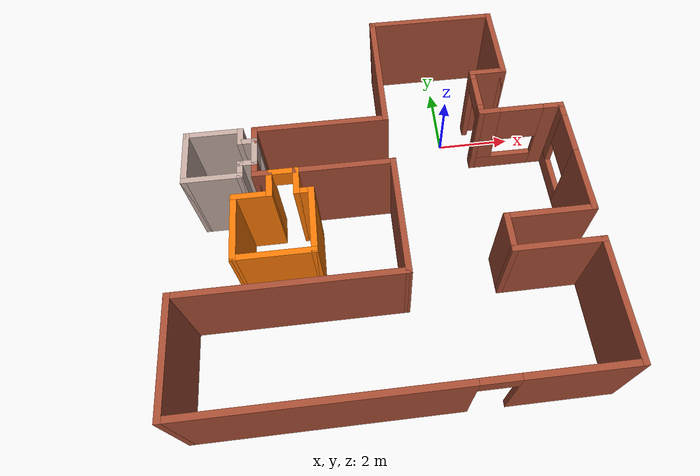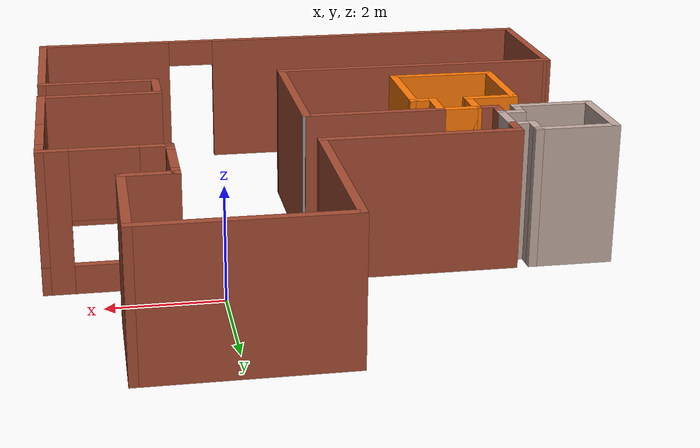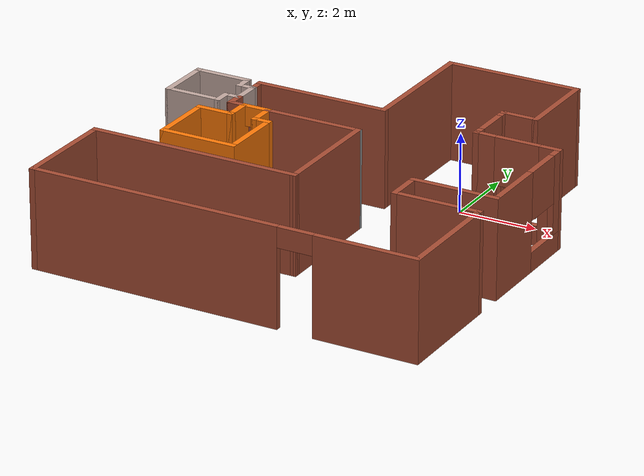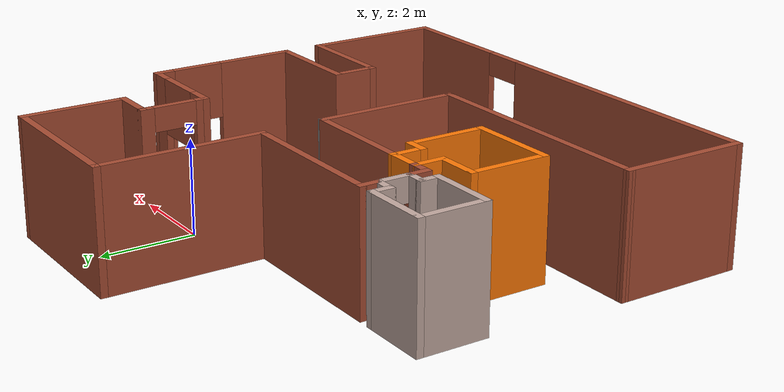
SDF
<?xml version='1.0'?>
<sdf version='1.6'>
  <model name='home'>
    <pose frame=''>-2.0249 -2.42178 0 0 -0 0</pose>
    <link name='Wall_10'>
      <collision name='Wall_10_Collision'>
        <geometry>
          <box>
            <size>2.25 0.15 2.5</size>
          </box>
        </geometry>
        <pose frame=''>0 0 1.25 0 -0 0</pose>
      </collision>
      <visual name='Wall_10_Visual'>
        <pose frame=''>0 0 1.25 0 -0 0</pose>
        <geometry>
          <box>
            <size>2.25 0.15 2.5</size>
          </box>
        </geometry>
        <material>
          <script>
            <uri>file://media/materials/scripts/gazebo.material</uri>
            <name>Gazebo/Bricks</name>
          </script>
          <ambient>1 1 1 1</ambient>
        </material>
        <meta>
          <layer>0</layer>
        </meta>
      </visual>
      <pose frame=''>3.67503 4.075 0 0 -0 1.5708</pose>
    </link>
    <link name='Wall_11'>
      <collision name='Wall_11_Collision'>
        <geometry>
          <box>
            <size>3.5 0.15 2.5</size>
          </box>
        </geometry>
        <pose frame=''>0 0 1.25 0 -0 0</pose>
      </collision>
      <visual name='Wall_11_Visual'>
        <pose frame=''>0 0 1.25 0 -0 0</pose>
        <geometry>
          <box>
            <size>3.5 0.15 2.5</size>
          </box>
        </geometry>
        <material>
          <script>
            <uri>file://media/materials/scripts/gazebo.material</uri>
            <name>Gazebo/Bricks</name>
          </script>
          <ambient>1 1 1 1</ambient>
        </material>
        <meta>
          <layer>0</layer>
        </meta>
      </visual>
      <pose frame=''>2.00003 5.125 0 0 -0 3.14159</pose>
    </link>
    <link name='Wall_12'>
      <collision name='Wall_12_Collision'>
        <geometry>
          <box>
            <size>3.5 0.15 2.5</size>
          </box>
        </geometry>
        <pose frame=''>0 0 1.25 0 -0 0</pose>
      </collision>
      <visual name='Wall_12_Visual'>
        <pose frame=''>0 0 1.25 0 -0 0</pose>
        <geometry>
          <box>
            <size>3.5 0.15 2.5</size>
          </box>
        </geometry>
        <material>
          <script>
            <uri>file://media/materials/scripts/gazebo.material</uri>
            <name>Gazebo/Bricks</name>
          </script>
          <ambient>1 1 1 1</ambient>
        </material>
        <meta>
          <layer>0</layer>
        </meta>
      </visual>
      <pose frame=''>0.325032 3.45 0 0 0 -1.5708</pose>
    </link>
    <link name='Wall_13'>
      <collision name='Wall_13_Collision'>
        <geometry>
          <box>
            <size>3.5 0.15 2.5</size>
          </box>
        </geometry>
        <pose frame=''>0 0 1.25 0 -0 0</pose>
      </collision>
      <visual name='Wall_13_Visual'>
        <pose frame=''>0 0 1.25 0 -0 0</pose>
        <geometry>
          <box>
            <size>3.5 0.15 2.5</size>
          </box>
        </geometry>
        <material>
          <script>
            <uri>file://media/materials/scripts/gazebo.material</uri>
            <name>Gazebo/Bricks</name>
          </script>
          <ambient>1 1 1 1</ambient>
        </material>
        <meta>
          <layer>0</layer>
        </meta>
      </visual>
      <pose frame=''>-1.34997 1.775 0 0 -0 3.14159</pose>
    </link>
    <link name='Wall_14'>
      <collision name='Wall_14_Collision'>
        <geometry>
          <box>
            <size>0.5 0.15 2.5</size>
          </box>
        </geometry>
        <pose frame=''>0 0 1.25 0 -0 0</pose>
      </collision>
      <visual name='Wall_14_Visual'>
        <pose frame=''>0 0 1.25 0 -0 0</pose>
        <geometry>
          <box>
            <size>0.5 0.15 2.5</size>
          </box>
        </geometry>
        <material>
          <script>
            <uri>file://media/materials/scripts/gazebo.material</uri>
            <name>Gazebo/Bricks</name>
          </script>
          <ambient>1 1 1 1</ambient>
        </material>
        <meta>
          <layer>0</layer>
        </meta>
      </visual>
      <pose frame=''>-3.02497 1.6 0 0 0 -1.5708</pose>
    </link>
    <link name='Wall_15'>
      <collision name='Wall_15_Collision'>
        <geometry>
          <box>
            <size>0.5 0.15 2.5</size>
          </box>
        </geometry>
        <pose frame=''>0 0 1.25 0 -0 0</pose>
      </collision>
      <visual name='Wall_15_Visual'>
        <pose frame=''>0 0 1.25 0 -0 0</pose>
        <geometry>
          <box>
            <size>0.5 0.15 2.5</size>
          </box>
        </geometry>
        <material>
          <script>
            <uri>file://media/materials/scripts/gazebo.material</uri>
            <name>Gazebo/Grey</name>
          </script>
          <ambient>0.760784 0.662745 0.627451 1</ambient>
        </material>
        <meta>
          <layer>0</layer>
        </meta>
      </visual>
      <pose frame=''>-3.19997 1.425 0 0 -0 3.14159</pose>
    </link>
    <link name='Wall_16'>
      <collision name='Wall_16_Collision'>
        <geometry>
          <box>
            <size>0.5 0.15 2.5</size>
          </box>
        </geometry>
        <pose frame=''>0 0 1.25 0 -0 0</pose>
      </collision>
      <visual name='Wall_16_Visual'>
        <pose frame=''>0 0 1.25 0 -0 0</pose>
        <geometry>
          <box>
            <size>0.5 0.15 2.5</size>
          </box>
        </geometry>
        <material>
          <script>
            <uri>file://media/materials/scripts/gazebo.material</uri>
            <name>Gazebo/Grey</name>
          </script>
          <ambient>0.760784 0.662745 0.627451 1</ambient>
        </material>
        <meta>
          <layer>0</layer>
        </meta>
      </visual>
      <pose frame=''>-3.37497 1.6 0 0 -0 1.5708</pose>
    </link>
    <link name='Wall_17'>
      <collision name='Wall_17_Collision'>
        <geometry>
          <box>
            <size>1.5 0.15 2.5</size>
          </box>
        </geometry>
        <pose frame=''>0 0 1.25 0 -0 0</pose>
      </collision>
      <visual name='Wall_17_Visual'>
        <pose frame=''>0 0 1.25 0 -0 0</pose>
        <geometry>
          <box>
            <size>1.5 0.15 2.5</size>
          </box>
        </geometry>
        <material>
          <script>
            <uri>file://media/materials/scripts/gazebo.material</uri>
            <name>Gazebo/Grey</name>
          </script>
          <ambient>0.760784 0.662745 0.627451 1</ambient>
        </material>
        <meta>
          <layer>0</layer>
        </meta>
      </visual>
      <pose frame=''>-4.04997 1.775 0 0 -0 3.14159</pose>
    </link>
    <link name='Wall_18'>
      <collision name='Wall_18_Collision'>
        <geometry>
          <box>
            <size>1.5 0.15 2.5</size>
          </box>
        </geometry>
        <pose frame=''>0 0 1.25 0 -0 0</pose>
      </collision>
      <visual name='Wall_18_Visual'>
        <pose frame=''>0 0 1.25 0 -0 0</pose>
        <geometry>
          <box>
            <size>1.5 0.15 2.5</size>
          </box>
        </geometry>
        <material>
          <script>
            <uri>file://media/materials/scripts/gazebo.material</uri>
            <name>Gazebo/Grey</name>
          </script>
          <ambient>0.760784 0.662745 0.627451 1</ambient>
        </material>
        <meta>
          <layer>0</layer>
        </meta>
      </visual>
      <pose frame=''>-4.72497 1.1 0 0 0 -1.5708</pose>
    </link>
    <link name='Wall_19'>
      <collision name='Wall_19_Collision'>
        <geometry>
          <box>
            <size>1.5 0.15 2.5</size>
          </box>
        </geometry>
        <pose frame=''>0 0 1.25 0 -0 0</pose>
      </collision>
      <visual name='Wall_19_Visual'>
        <pose frame=''>0 0 1.25 0 -0 0</pose>
        <geometry>
          <box>
            <size>1.5 0.15 2.5</size>
          </box>
        </geometry>
        <material>
          <script>
            <uri>file://media/materials/scripts/gazebo.material</uri>
            <name>Gazebo/Grey</name>
          </script>
          <ambient>0.760784 0.662745 0.627451 1</ambient>
        </material>
        <meta>
          <layer>0</layer>
        </meta>
      </visual>
      <pose frame=''>-4.04997 0.425 0 0 -0 0</pose>
    </link>
    <link name='Wall_2'>
      <collision name='Wall_2_Collision'>
        <geometry>
          <box>
            <size>3 0.15 2.5</size>
          </box>
        </geometry>
        <pose frame=''>0 0 1.25 0 -0 0</pose>
      </collision>
      <visual name='Wall_2_Visual'>
        <pose frame=''>0 0 1.25 0 -0 0</pose>
        <geometry>
          <box>
            <size>3 0.15 2.5</size>
          </box>
        </geometry>
        <material>
          <script>
            <uri>file://media/materials/scripts/gazebo.material</uri>
            <name>Gazebo/Bricks</name>
          </script>
          <ambient>1 1 1 1</ambient>
        </material>
        <meta>
          <layer>0</layer>
        </meta>
      </visual>
      <pose frame=''>4.92503 -3.7 0 0 -0 1.5708</pose>
    </link>
    <link name='Wall_20'>
      <collision name='Wall_20_Collision'>
        <geometry>
          <box>
            <size>0.5 0.15 2.5</size>
          </box>
        </geometry>
        <pose frame=''>0 0 1.25 0 -0 0</pose>
      </collision>
      <visual name='Wall_20_Visual'>
        <pose frame=''>0 0 1.25 0 -0 0</pose>
        <geometry>
          <box>
            <size>0.5 0.15 2.5</size>
          </box>
        </geometry>
        <material>
          <script>
            <uri>file://media/materials/scripts/gazebo.material</uri>
            <name>Gazebo/Grey</name>
          </script>
          <ambient>0.760784 0.662745 0.627451 1</ambient>
        </material>
        <meta>
          <layer>0</layer>
        </meta>
      </visual>
      <pose frame=''>-3.37497 0.6 0 0 -0 1.5708</pose>
    </link>
    <link name='Wall_21'>
      <collision name='Wall_21_Collision'>
        <geometry>
          <box>
            <size>0.5 0.15 2.5</size>
          </box>
        </geometry>
        <pose frame=''>0 0 1.25 0 -0 0</pose>
      </collision>
      <visual name='Wall_21_Visual'>
        <pose frame=''>0 0 1.25 0 -0 0</pose>
        <geometry>
          <box>
            <size>0.5 0.15 2.5</size>
          </box>
        </geometry>
        <material>
          <script>
            <uri>file://media/materials/scripts/gazebo.material</uri>
            <name>Gazebo/Grey</name>
          </script>
          <ambient>0.760784 0.662745 0.627451 1</ambient>
        </material>
        <meta>
          <layer>0</layer>
        </meta>
      </visual>
      <pose frame=''>-3.19997 0.775 0 0 -0 0</pose>
    </link>
    <link name='Wall_22'>
      <collision name='Wall_22_Collision'>
        <geometry>
          <box>
            <size>0.5 0.15 2.5</size>
          </box>
        </geometry>
        <pose frame=''>0 0 1.25 0 -0 0</pose>
      </collision>
      <visual name='Wall_22_Visual'>
        <pose frame=''>0 0 1.25 0 -0 0</pose>
        <geometry>
          <box>
            <size>0.5 0.15 2.5</size>
          </box>
        </geometry>
        <material>
          <script>
            <uri>file://media/materials/scripts/gazebo.material</uri>
            <name>Gazebo/Bricks</name>
          </script>
          <ambient>1 1 1 1</ambient>
        </material>
        <meta>
          <layer>0</layer>
        </meta>
      </visual>
      <pose frame=''>-3.02497 0.6 0 0 0 -1.5708</pose>
    </link>
    <link name='Wall_23'>
      <collision name='Wall_23_Collision'>
        <geometry>
          <box>
            <size>0.5 0.15 2.5</size>
          </box>
        </geometry>
        <pose frame=''>0 0 1.25 0 -0 0</pose>
      </collision>
      <visual name='Wall_23_Visual'>
        <pose frame=''>0 0 1.25 0 -0 0</pose>
        <geometry>
          <box>
            <size>0.5 0.15 2.5</size>
          </box>
        </geometry>
        <material>
          <script>
            <uri>file://media/materials/scripts/gazebo.material</uri>
            <name>Gazebo/Bricks</name>
          </script>
          <ambient>1 1 1 1</ambient>
        </material>
        <meta>
          <layer>0</layer>
        </meta>
      </visual>
      <pose frame=''>-2.84997 0.425 0 0 -0 0</pose>
    </link>
    <link name='Wall_24'>
      <collision name='Wall_24_Collision'>
        <geometry>
          <box>
            <size>0.75 0.15 2.5</size>
          </box>
        </geometry>
        <pose frame=''>0 0 1.25 0 -0 0</pose>
      </collision>
      <visual name='Wall_24_Visual'>
        <pose frame=''>0 0 1.25 0 -0 0</pose>
        <geometry>
          <box>
            <size>0.75 0.15 2.5</size>
          </box>
        </geometry>
        <material>
          <script>
            <uri>file://media/materials/scripts/gazebo.material</uri>
            <name>Gazebo/Grey</name>
          </script>
          <ambient>0.996078 0.47451 0.0196078 1</ambient>
        </material>
        <meta>
          <layer>0</layer>
        </meta>
      </visual>
      <pose frame=''>-2.67497 0.125 0 0 0 -1.5708</pose>
    </link>
    <link name='Wall_28'>
      <collision name='Wall_28_Collision'>
        <geometry>
          <box>
            <size>1 0.15 2.5</size>
          </box>
        </geometry>
        <pose frame=''>0 0 1.25 0 -0 0</pose>
      </collision>
      <visual name='Wall_28_Visual'>
        <pose frame=''>0 0 1.25 0 -0 0</pose>
        <geometry>
          <box>
            <size>1 0.15 2.5</size>
          </box>
        </geometry>
        <material>
          <script>
            <uri>file://media/materials/scripts/gazebo.material</uri>
            <name>Gazebo/Grey</name>
          </script>
          <ambient>0.996078 0.47451 0.0196078 1</ambient>
        </material>
        <meta>
          <layer>0</layer>
        </meta>
      </visual>
      <pose frame=''>-3.09997 -0.175 0 0 -0 3.14159</pose>
    </link>
    <link name='Wall_29'>
      <collision name='Wall_29_Collision'>
        <geometry>
          <box>
            <size>1.75 0.15 2.5</size>
          </box>
        </geometry>
        <pose frame=''>0 0 1.25 0 -0 0</pose>
      </collision>
      <visual name='Wall_29_Visual'>
        <pose frame=''>0 0 1.25 0 -0 0</pose>
        <geometry>
          <box>
            <size>1.75 0.15 2.5</size>
          </box>
        </geometry>
        <material>
          <script>
            <uri>file://media/materials/scripts/gazebo.material</uri>
            <name>Gazebo/Grey</name>
          </script>
          <ambient>0.996078 0.47451 0.0196078 1</ambient>
        </material>
        <meta>
          <layer>0</layer>
        </meta>
      </visual>
      <pose frame=''>-3.52497 -0.975 0 0 0 -1.5708</pose>
    </link>
    <link name='Wall_3'>
      <collision name='Wall_3_Collision'>
        <geometry>
          <box>
            <size>2.25 0.15 2.5</size>
          </box>
        </geometry>
        <pose frame=''>0 0 1.25 0 -0 0</pose>
      </collision>
      <visual name='Wall_3_Visual'>
        <pose frame=''>0 0 1.25 0 -0 0</pose>
        <geometry>
          <box>
            <size>2.25 0.15 2.5</size>
          </box>
        </geometry>
        <material>
          <script>
            <uri>file://media/materials/scripts/gazebo.material</uri>
            <name>Gazebo/Bricks</name>
          </script>
          <ambient>1 1 1 1</ambient>
        </material>
        <meta>
          <layer>0</layer>
        </meta>
      </visual>
      <pose frame=''>3.87503 -2.275 0 0 -0 3.14159</pose>
    </link>
    <link name='Wall_33'>
      <collision name='Wall_33_Collision'>
        <geometry>
          <box>
            <size>2 0.15 2.5</size>
          </box>
        </geometry>
        <pose frame=''>0 0 1.25 0 -0 0</pose>
      </collision>
      <visual name='Wall_33_Visual'>
        <pose frame=''>0 0 1.25 0 -0 0</pose>
        <geometry>
          <box>
            <size>2 0.15 2.5</size>
          </box>
        </geometry>
        <material>
          <script>
            <uri>file://media/materials/scripts/gazebo.material</uri>
            <name>Gazebo/Grey</name>
          </script>
          <ambient>0.996078 0.47451 0.0196078 1</ambient>
        </material>
        <meta>
          <layer>0</layer>
        </meta>
      </visual>
      <pose frame=''>-2.59997 -1.775 0 0 -0 0</pose>
    </link>
    <link name='Wall_34'>
      <collision name='Wall_34_Collision'>
        <geometry>
          <box>
            <size>1.75 0.15 2.5</size>
          </box>
        </geometry>
        <pose frame=''>0 0 1.25 0 -0 0</pose>
      </collision>
      <visual name='Wall_34_Visual'>
        <pose frame=''>0 0 1.25 0 -0 0</pose>
        <geometry>
          <box>
            <size>1.75 0.15 2.5</size>
          </box>
        </geometry>
        <material>
          <script>
            <uri>file://media/materials/scripts/gazebo.material</uri>
            <name>Gazebo/Grey</name>
          </script>
          <ambient>0.996078 0.47451 0.0196078 1</ambient>
        </material>
        <meta>
          <layer>0</layer>
        </meta>
      </visual>
      <pose frame=''>-1.67497 -0.975 0 0 -0 1.5708</pose>
    </link>
    <link name='Wall_35'>
      <collision name='Wall_35_Collision'>
        <geometry>
          <box>
            <size>0.5 0.15 2.5</size>
          </box>
        </geometry>
        <pose frame=''>0 0 1.25 0 -0 0</pose>
      </collision>
      <visual name='Wall_35_Visual'>
        <pose frame=''>0 0 1.25 0 -0 0</pose>
        <geometry>
          <box>
            <size>0.5 0.15 2.5</size>
          </box>
        </geometry>
        <material>
          <script>
            <uri>file://media/materials/scripts/gazebo.material</uri>
            <name>Gazebo/Grey</name>
          </script>
          <ambient>0.996078 0.47451 0.0196078 1</ambient>
        </material>
        <meta>
          <layer>0</layer>
        </meta>
      </visual>
      <pose frame=''>-1.84997 -0.175 0 0 -0 3.14159</pose>
    </link>
    <link name='Wall_36'>
      <collision name='Wall_36_Collision'>
        <geometry>
          <box>
            <size>0.75 0.15 2.5</size>
          </box>
        </geometry>
        <pose frame=''>0 0 1.25 0 -0 0</pose>
      </collision>
      <visual name='Wall_36_Visual'>
        <pose frame=''>0 0 1.25 0 -0 0</pose>
        <geometry>
          <box>
            <size>0.75 0.15 2.5</size>
          </box>
        </geometry>
        <material>
          <script>
            <uri>file://media/materials/scripts/gazebo.material</uri>
            <name>Gazebo/Grey</name>
          </script>
          <ambient>0.996078 0.47451 0.0196078 1</ambient>
        </material>
        <meta>
          <layer>0</layer>
        </meta>
      </visual>
      <pose frame=''>-2.02497 0.125 0 0 -0 1.5708</pose>
    </link>
    <link name='Wall_37'>
      <collision name='Wall_37_Collision'>
        <geometry>
          <box>
            <size>2.5 0.15 2.5</size>
          </box>
        </geometry>
        <pose frame=''>0 0 1.25 0 -0 0</pose>
      </collision>
      <visual name='Wall_37_Visual'>
        <pose frame=''>0 0 1.25 0 -0 0</pose>
        <geometry>
          <box>
            <size>2.5 0.15 2.5</size>
          </box>
        </geometry>
        <material>
          <script>
            <uri>file://media/materials/scripts/gazebo.material</uri>
            <name>Gazebo/Bricks</name>
          </script>
          <ambient>1 1 1 1</ambient>
        </material>
        <meta>
          <layer>0</layer>
        </meta>
      </visual>
      <pose frame=''>-0.849968 0.425 0 0 -0 0</pose>
    </link>
    <link name='Wall_4'>
      <collision name='Wall_4_Collision'>
        <geometry>
          <box>
            <size>1 0.15 2.5</size>
          </box>
        </geometry>
        <pose frame=''>0 0 1.25 0 -0 0</pose>
      </collision>
      <visual name='Wall_4_Visual'>
        <pose frame=''>0 0 1.25 0 -0 0</pose>
        <geometry>
          <box>
            <size>1 0.15 2.5</size>
          </box>
        </geometry>
        <material>
          <script>
            <uri>file://media/materials/scripts/gazebo.material</uri>
            <name>Gazebo/Bricks</name>
          </script>
          <ambient>1 1 1 1</ambient>
        </material>
        <meta>
          <layer>0</layer>
        </meta>
      </visual>
      <pose frame=''>2.82503 -1.85 0 0 -0 1.5708</pose>
    </link>
    <link name='Wall_43'>
      <pose frame=''>3.2e-05 -5.125 0 0 -0 3.14159</pose>
      <visual name='Wall_43_Visual_0'>
        <pose frame=''>-3.68092 0 1.25 0 -0 0</pose>
        <geometry>
          <box>
            <size>2.63816 0.15 2.5</size>
          </box>
        </geometry>
        <material>
          <script>
            <uri>file://media/materials/scripts/gazebo.material</uri>
            <name>Gazebo/Bricks</name>
          </script>
          <ambient>1 1 1 1</ambient>
        </material>
        <meta>
          <layer>0</layer>
        </meta>
      </visual>
      <collision name='Wall_43_Collision_0'>
        <geometry>
          <box>
            <size>2.63816 0.15 2.5</size>
          </box>
        </geometry>
        <pose frame=''>-3.68092 0 1.25 0 -0 0</pose>
      </collision>
      <visual name='Wall_43_Visual_1'>
        <pose frame=''>1.76908 0 1.25 0 -0 0</pose>
        <geometry>
          <box>
            <size>6.46184 0.15 2.5</size>
          </box>
        </geometry>
        <material>
          <script>
            <uri>file://media/materials/scripts/gazebo.material</uri>
            <name>Gazebo/Bricks</name>
          </script>
          <ambient>1 1 1 1</ambient>
        </material>
        <meta>
          <layer>0</layer>
        </meta>
      </visual>
      <collision name='Wall_43_Collision_1'>
        <geometry>
          <box>
            <size>6.46184 0.15 2.5</size>
          </box>
        </geometry>
        <pose frame=''>1.76908 0 1.25 0 -0 0</pose>
      </collision>
      <visual name='Wall_43_Visual_2'>
        <pose frame=''>-1.91184 0 2.25 0 -0 0</pose>
        <geometry>
          <box>
            <size>0.9 0.15 0.5</size>
          </box>
        </geometry>
        <material>
          <script>
            <uri>file://media/materials/scripts/gazebo.material</uri>
            <name>Gazebo/Bricks</name>
          </script>
          <ambient>1 1 1 1</ambient>
        </material>
        <meta>
          <layer>0</layer>
        </meta>
      </visual>
      <collision name='Wall_43_Collision_2'>
        <geometry>
          <box>
            <size>0.9 0.15 0.5</size>
          </box>
        </geometry>
        <pose frame=''>-1.91184 0 2.25 0 -0 0</pose>
      </collision>
    </link>
    <link name='Wall_44'>
      <collision name='Wall_44_Collision'>
        <geometry>
          <box>
            <size>2.75 0.15 2.5</size>
          </box>
        </geometry>
        <pose frame=''>0 0 1.25 0 -0 0</pose>
      </collision>
      <visual name='Wall_44_Visual'>
        <pose frame=''>0 0 1.25 0 -0 0</pose>
        <geometry>
          <box>
            <size>2.75 0.15 2.5</size>
          </box>
        </geometry>
        <material>
          <script>
            <uri>file://media/materials/scripts/gazebo.material</uri>
            <name>Gazebo/Bricks</name>
          </script>
          <ambient>1 1 1 1</ambient>
        </material>
        <meta>
          <layer>0</layer>
        </meta>
      </visual>
      <pose frame=''>-4.92497 -3.825 0 0 -0 1.5708</pose>
    </link>
    <link name='Wall_48'>
      <collision name='Wall_48_Collision'>
        <geometry>
          <box>
            <size>5.45338 0.15 2.5</size>
          </box>
        </geometry>
        <pose frame=''>0 0 1.25 0 -0 0</pose>
      </collision>
      <visual name='Wall_48_Visual'>
        <pose frame=''>0 0 1.25 0 -0 0</pose>
        <geometry>
          <box>
            <size>5.45338 0.15 2.5</size>
          </box>
        </geometry>
        <material>
          <script>
            <uri>file://media/materials/scripts/gazebo.material</uri>
            <name>Gazebo/Bricks</name>
          </script>
          <ambient>1 1 1 1</ambient>
        </material>
        <meta>
          <layer>0</layer>
        </meta>
      </visual>
      <pose frame=''>-2.27328 -2.52727 0 0 0 -0.000856</pose>
    </link>
    <link name='Wall_49'>
      <collision name='Wall_49_Collision'>
        <geometry>
          <box>
            <size>3.09697 0.15 2.5</size>
          </box>
        </geometry>
        <pose frame=''>0 0 1.25 0 -0 0</pose>
      </collision>
      <visual name='Wall_49_Visual'>
        <pose frame=''>0 0 1.25 0 -0 0</pose>
        <geometry>
          <box>
            <size>3.09697 0.15 2.5</size>
          </box>
        </geometry>
        <material>
          <script>
            <uri>file://media/materials/scripts/gazebo.material</uri>
            <name>Gazebo/Bricks</name>
          </script>
          <ambient>1 1 1 1</ambient>
        </material>
        <meta>
          <layer>0</layer>
        </meta>
      </visual>
      <pose frame=''>0.375849 -1.05607 0 0 -0 1.57254</pose>
    </link>
    <link name='Wall_5'>
      <collision name='Wall_5_Collision'>
        <geometry>
          <box>
            <size>2.25 0.15 2.5</size>
          </box>
        </geometry>
        <pose frame=''>0 0 1.25 0 -0 0</pose>
      </collision>
      <visual name='Wall_5_Visual'>
        <pose frame=''>0 0 1.25 0 -0 0</pose>
        <geometry>
          <box>
            <size>2.25 0.15 2.5</size>
          </box>
        </geometry>
        <material>
          <script>
            <uri>file://media/materials/scripts/gazebo.material</uri>
            <name>Gazebo/Bricks</name>
          </script>
          <ambient>1 1 1 1</ambient>
        </material>
        <meta>
          <layer>0</layer>
        </meta>
      </visual>
      <pose frame=''>3.87503 -1.425 0 0 -0 0</pose>
    </link>
    <link name='Wall_52'>
      <collision name='Wall_52_Collision'>
        <geometry>
          <box>
            <size>0.15 0.15 2.5</size>
          </box>
        </geometry>
        <pose frame=''>0 0 1.25 0 -0 0</pose>
      </collision>
      <visual name='Wall_52_Visual'>
        <pose frame=''>0 0 1.25 0 -0 0</pose>
        <geometry>
          <box>
            <size>0.15 0.15 2.5</size>
          </box>
        </geometry>
        <material>
          <script>
            <uri>file://media/materials/scripts/gazebo.material</uri>
            <name>Gazebo/Grey</name>
          </script>
          <ambient>1 1 1 1</ambient>
        </material>
        <meta>
          <layer>0</layer>
        </meta>
      </visual>
      <pose frame=''>0.373287 0.421097 0 0 -0 0</pose>
    </link>
    <link name='Wall_55'>
      <pose frame=''>-3.02497 1.1 0 0 0 -1.5708</pose>
      <visual name='Wall_55_Visual_0'>
        <pose frame=''>-0.354187 0 1.25 0 -0 0</pose>
        <geometry>
          <box>
            <size>0.091626 0.15 2.5</size>
          </box>
        </geometry>
        <material>
          <script>
            <uri>file://media/materials/scripts/gazebo.material</uri>
            <name>Gazebo/Grey</name>
          </script>
          <ambient>0.760784 0.662745 0.627451 1</ambient>
        </material>
        <meta>
          <layer>0</layer>
        </meta>
      </visual>
      <collision name='Wall_55_Collision_0'>
        <geometry>
          <box>
            <size>0.091626 0.15 2.5</size>
          </box>
        </geometry>
        <pose frame=''>-0.354187 0 1.25 0 -0 0</pose>
      </collision>
      <visual name='Wall_55_Visual_1'>
        <pose frame=''>0.362229 0 1.25 0 -0 0</pose>
        <geometry>
          <box>
            <size>0.075541 0.15 2.5</size>
          </box>
        </geometry>
        <material>
          <script>
            <uri>file://media/materials/scripts/gazebo.material</uri>
            <name>Gazebo/Grey</name>
          </script>
          <ambient>0.760784 0.662745 0.627451 1</ambient>
        </material>
        <meta>
          <layer>0</layer>
        </meta>
      </visual>
      <collision name='Wall_55_Collision_1'>
        <geometry>
          <box>
            <size>0.075541 0.15 2.5</size>
          </box>
        </geometry>
        <pose frame=''>0.362229 0 1.25 0 -0 0</pose>
      </collision>
      <visual name='Wall_55_Visual_2'>
        <pose frame=''>0.008042 0 2.25 0 -0 0</pose>
        <geometry>
          <box>
            <size>0.632833 0.15 0.5</size>
          </box>
        </geometry>
        <material>
          <script>
            <uri>file://media/materials/scripts/gazebo.material</uri>
            <name>Gazebo/Grey</name>
          </script>
          <ambient>0.760784 0.662745 0.627451 1</ambient>
        </material>
        <meta>
          <layer>0</layer>
        </meta>
      </visual>
      <collision name='Wall_55_Collision_2'>
        <geometry>
          <box>
            <size>0.632833 0.15 0.5</size>
          </box>
        </geometry>
        <pose frame=''>0.008042 0 2.25 0 -0 0</pose>
      </collision>
    </link>
    <link name='Wall_57'>
      <pose frame=''>-2.34997 0.425 0 0 -0 0</pose>
      <visual name='Wall_57_Visual_0'>
        <pose frame=''>-0.365442 0 1.25 0 -0 0</pose>
        <geometry>
          <box>
            <size>0.069115 0.15 2.5</size>
          </box>
        </geometry>
        <material>
          <script>
            <uri>file://media/materials/scripts/gazebo.material</uri>
            <name>Gazebo/Grey</name>
          </script>
          <ambient>0.996078 0.47451 0.0196078 1</ambient>
        </material>
        <meta>
          <layer>0</layer>
        </meta>
      </visual>
      <collision name='Wall_57_Collision_0'>
        <geometry>
          <box>
            <size>0.069115 0.15 2.5</size>
          </box>
        </geometry>
        <pose frame=''>-0.365442 0 1.25 0 -0 0</pose>
      </collision>
      <visual name='Wall_57_Visual_1'>
        <pose frame=''>0.355623 0 1.25 0 -0 0</pose>
        <geometry>
          <box>
            <size>0.088753 0.15 2.5</size>
          </box>
        </geometry>
        <material>
          <script>
            <uri>file://media/materials/scripts/gazebo.material</uri>
            <name>Gazebo/Grey</name>
          </script>
          <ambient>0.996078 0.47451 0.0196078 1</ambient>
        </material>
        <meta>
          <layer>0</layer>
        </meta>
      </visual>
      <collision name='Wall_57_Collision_1'>
        <geometry>
          <box>
            <size>0.088753 0.15 2.5</size>
          </box>
        </geometry>
        <pose frame=''>0.355623 0 1.25 0 -0 0</pose>
      </collision>
      <visual name='Wall_57_Visual_2'>
        <pose frame=''>-0.009819 0 2.25 0 -0 0</pose>
        <geometry>
          <box>
            <size>0.642131 0.15 0.5</size>
          </box>
        </geometry>
        <material>
          <script>
            <uri>file://media/materials/scripts/gazebo.material</uri>
            <name>Gazebo/Grey</name>
          </script>
          <ambient>0.996078 0.47451 0.0196078 1</ambient>
        </material>
        <meta>
          <layer>0</layer>
        </meta>
      </visual>
      <collision name='Wall_57_Collision_2'>
        <geometry>
          <box>
            <size>0.642131 0.15 0.5</size>
          </box>
        </geometry>
        <pose frame=''>-0.009819 0 2.25 0 -0 0</pose>
      </collision>
    </link>
    <link name='Wall_6'>
      <pose frame=''>4.92503 0.125 0 0 -0 1.5708</pose>
      <visual name='Wall_6_Visual_0'>
        <pose frame=''>-0.764074 0 1.25 0 -0 0</pose>
        <geometry>
          <box>
            <size>1.72185 0.15 2.5</size>
          </box>
        </geometry>
        <material>
          <script>
            <uri>file://media/materials/scripts/gazebo.material</uri>
            <name>Gazebo/Bricks</name>
          </script>
          <ambient>1 1 1 1</ambient>
        </material>
        <meta>
          <layer>0</layer>
        </meta>
      </visual>
      <collision name='Wall_6_Collision_0'>
        <geometry>
          <box>
            <size>1.72185 0.15 2.5</size>
          </box>
        </geometry>
        <pose frame=''>-0.764074 0 1.25 0 -0 0</pose>
      </collision>
      <visual name='Wall_6_Visual_1'>
        <pose frame=''>0.860926 0 0.25 0 -0 0</pose>
        <geometry>
          <box>
            <size>1.52815 0.15 0.5</size>
          </box>
        </geometry>
        <material>
          <script>
            <uri>file://media/materials/scripts/gazebo.material</uri>
            <name>Gazebo/Bricks</name>
          </script>
          <ambient>1 1 1 1</ambient>
        </material>
        <meta>
          <layer>0</layer>
        </meta>
      </visual>
      <collision name='Wall_6_Collision_1'>
        <geometry>
          <box>
            <size>1.52815 0.15 0.5</size>
          </box>
        </geometry>
        <pose frame=''>0.860926 0 0.25 0 -0 0</pose>
      </collision>
      <visual name='Wall_6_Visual_2'>
        <pose frame=''>1.40882 0 1.5 0 -0 0</pose>
        <geometry>
          <box>
            <size>0.432369 0.15 2</size>
          </box>
        </geometry>
        <material>
          <script>
            <uri>file://media/materials/scripts/gazebo.material</uri>
            <name>Gazebo/Bricks</name>
          </script>
          <ambient>1 1 1 1</ambient>
        </material>
        <meta>
          <layer>0</layer>
        </meta>
      </visual>
      <collision name='Wall_6_Collision_2'>
        <geometry>
          <box>
            <size>0.432369 0.15 2</size>
          </box>
        </geometry>
        <pose frame=''>1.40882 0 1.5 0 -0 0</pose>
      </collision>
      <visual name='Wall_6_Visual_3'>
        <pose frame=''>0.644742 0 1.9 0 -0 0</pose>
        <geometry>
          <box>
            <size>1.09578 0.15 1.2</size>
          </box>
        </geometry>
        <material>
          <script>
            <uri>file://media/materials/scripts/gazebo.material</uri>
            <name>Gazebo/Bricks</name>
          </script>
          <ambient>1 1 1 1</ambient>
        </material>
        <meta>
          <layer>0</layer>
        </meta>
      </visual>
      <collision name='Wall_6_Collision_3'>
        <geometry>
          <box>
            <size>1.09578 0.15 1.2</size>
          </box>
        </geometry>
        <pose frame=''>0.644742 0 1.9 0 -0 0</pose>
      </collision>
    </link>
    <link name='Wall_7'>
      <pose frame=''>3.87503 1.675 0 0 -0 3.14159</pose>
      <visual name='Wall_7_Visual_0'>
        <pose frame=''>-0.852878 0 1.25 0 -0 0</pose>
        <geometry>
          <box>
            <size>0.544245 0.15 2.5</size>
          </box>
        </geometry>
        <material>
          <script>
            <uri>file://media/materials/scripts/gazebo.material</uri>
            <name>Gazebo/Bricks</name>
          </script>
          <ambient>1 1 1 1</ambient>
        </material>
        <meta>
          <layer>0</layer>
        </meta>
      </visual>
      <collision name='Wall_7_Collision_0'>
        <geometry>
          <box>
            <size>0.544245 0.15 2.5</size>
          </box>
        </geometry>
        <pose frame=''>-0.852878 0 1.25 0 -0 0</pose>
      </collision>
      <visual name='Wall_7_Visual_1'>
        <pose frame=''>0.272122 0 0.25 0 -0 0</pose>
        <geometry>
          <box>
            <size>1.70575 0.15 0.5</size>
          </box>
        </geometry>
        <material>
          <script>
            <uri>file://media/materials/scripts/gazebo.material</uri>
            <name>Gazebo/Bricks</name>
          </script>
          <ambient>1 1 1 1</ambient>
        </material>
        <meta>
          <layer>0</layer>
        </meta>
      </visual>
      <collision name='Wall_7_Collision_1'>
        <geometry>
          <box>
            <size>1.70575 0.15 0.5</size>
          </box>
        </geometry>
        <pose frame=''>0.272122 0 0.25 0 -0 0</pose>
      </collision>
      <visual name='Wall_7_Visual_2'>
        <pose frame=''>0.841009 0 1.5 0 -0 0</pose>
        <geometry>
          <box>
            <size>0.567982 0.15 2</size>
          </box>
        </geometry>
        <material>
          <script>
            <uri>file://media/materials/scripts/gazebo.material</uri>
            <name>Gazebo/Bricks</name>
          </script>
          <ambient>1 1 1 1</ambient>
        </material>
        <meta>
          <layer>0</layer>
        </meta>
      </visual>
      <collision name='Wall_7_Collision_2'>
        <geometry>
          <box>
            <size>0.567982 0.15 2</size>
          </box>
        </geometry>
        <pose frame=''>0.841009 0 1.5 0 -0 0</pose>
      </collision>
      <visual name='Wall_7_Visual_3'>
        <pose frame=''>-0.011869 0 1.9 0 -0 0</pose>
        <geometry>
          <box>
            <size>1.13777 0.15 1.2</size>
          </box>
        </geometry>
        <material>
          <script>
            <uri>file://media/materials/scripts/gazebo.material</uri>
            <name>Gazebo/Bricks</name>
          </script>
          <ambient>1 1 1 1</ambient>
        </material>
        <meta>
          <layer>0</layer>
        </meta>
      </visual>
      <collision name='Wall_7_Collision_3'>
        <geometry>
          <box>
            <size>1.13777 0.15 1.2</size>
          </box>
        </geometry>
        <pose frame=''>-0.011869 0 1.9 0 -0 0</pose>
      </collision>
    </link>
    <link name='Wall_8'>
      <pose frame=''>2.82503 2.35 0 0 -0 1.5708</pose>
      <visual name='Wall_8_Visual_0'>
        <pose frame=''>-0.598383 0 1.25 0 -0 0</pose>
        <geometry>
          <box>
            <size>0.303235 0.15 2.5</size>
          </box>
        </geometry>
        <material>
          <script>
            <uri>file://media/materials/scripts/gazebo.material</uri>
            <name>Gazebo/Bricks</name>
          </script>
          <ambient>1 1 1 1</ambient>
        </material>
        <meta>
          <layer>0</layer>
        </meta>
      </visual>
      <collision name='Wall_8_Collision_0'>
        <geometry>
          <box>
            <size>0.303235 0.15 2.5</size>
          </box>
        </geometry>
        <pose frame=''>-0.598383 0 1.25 0 -0 0</pose>
      </collision>
      <visual name='Wall_8_Visual_1'>
        <pose frame=''>0.601617 0 1.25 0 -0 0</pose>
        <geometry>
          <box>
            <size>0.296765 0.15 2.5</size>
          </box>
        </geometry>
        <material>
          <script>
            <uri>file://media/materials/scripts/gazebo.material</uri>
            <name>Gazebo/Bricks</name>
          </script>
          <ambient>1 1 1 1</ambient>
        </material>
        <meta>
          <layer>0</layer>
        </meta>
      </visual>
      <collision name='Wall_8_Collision_1'>
        <geometry>
          <box>
            <size>0.296765 0.15 2.5</size>
          </box>
        </geometry>
        <pose frame=''>0.601617 0 1.25 0 -0 0</pose>
      </collision>
      <visual name='Wall_8_Visual_2'>
        <pose frame=''>0.003235 0 2.25 0 -0 0</pose>
        <geometry>
          <box>
            <size>0.9 0.15 0.5</size>
          </box>
        </geometry>
        <material>
          <script>
            <uri>file://media/materials/scripts/gazebo.material</uri>
            <name>Gazebo/Bricks</name>
          </script>
          <ambient>1 1 1 1</ambient>
        </material>
        <meta>
          <layer>0</layer>
        </meta>
      </visual>
      <collision name='Wall_8_Collision_2'>
        <geometry>
          <box>
            <size>0.9 0.15 0.5</size>
          </box>
        </geometry>
        <pose frame=''>0.003235 0 2.25 0 -0 0</pose>
      </collision>
    </link>
    <link name='Wall_9'>
      <collision name='Wall_9_Collision'>
        <geometry>
          <box>
            <size>1 0.15 2.5</size>
          </box>
        </geometry>
        <pose frame=''>0 0 1.25 0 -0 0</pose>
      </collision>
      <visual name='Wall_9_Visual'>
        <pose frame=''>0 0 1.25 0 -0 0</pose>
        <geometry>
          <box>
            <size>1 0.15 2.5</size>
          </box>
        </geometry>
        <material>
          <script>
            <uri>file://media/materials/scripts/gazebo.material</uri>
            <name>Gazebo/Bricks</name>
          </script>
          <ambient>1 1 1 1</ambient>
        </material>
        <meta>
          <layer>0</layer>
        </meta>
      </visual>
      <pose frame=''>3.25003 3.025 0 0 -0 0</pose>
    </link>
    <static>1</static>
  </model>
</sdf>
